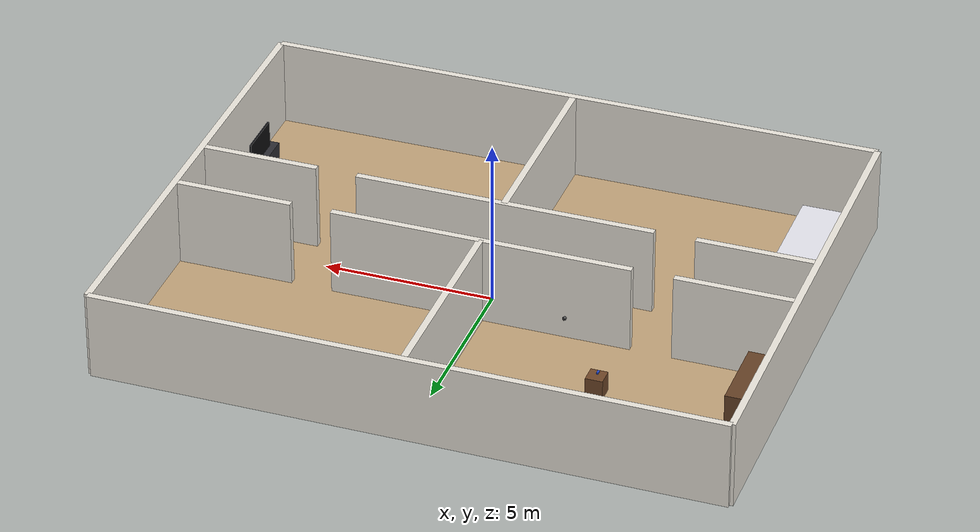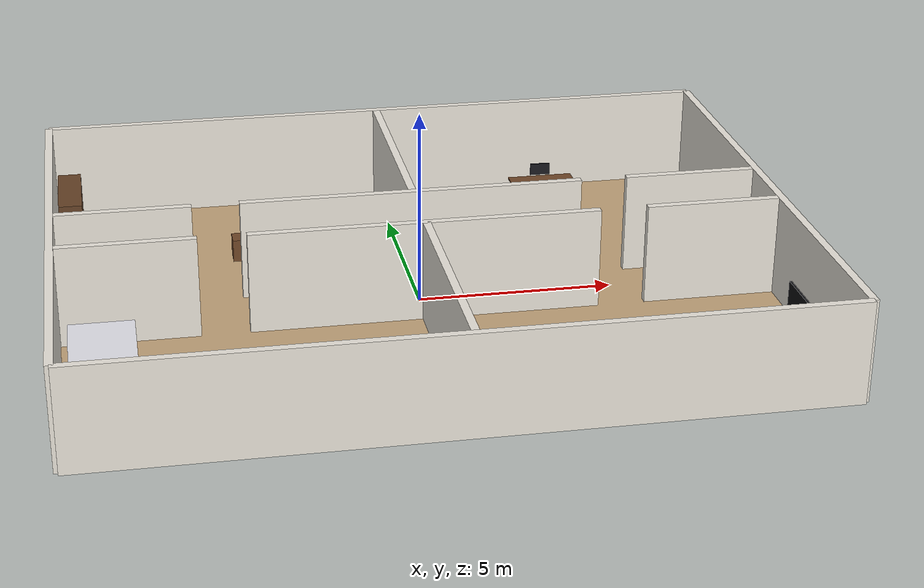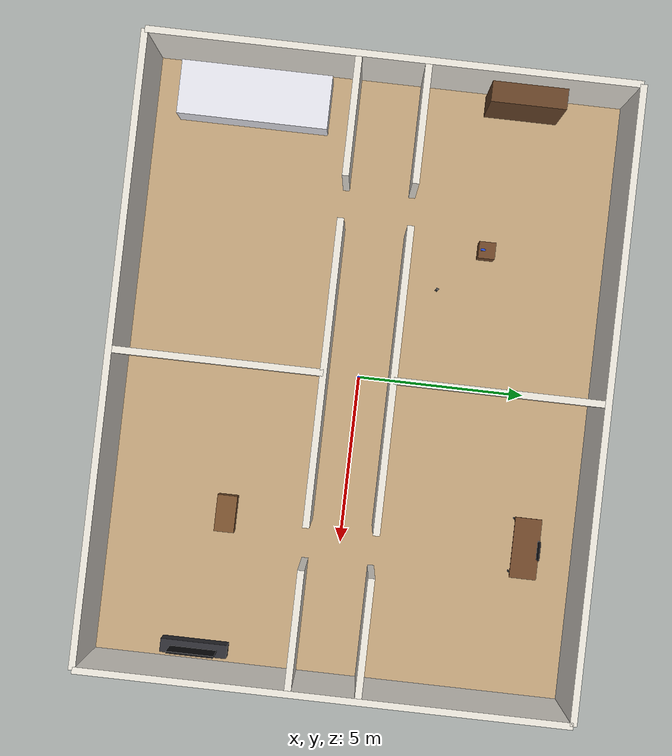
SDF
<sdf version="1.6">
 <world name="gracemo_home">
  <model name="floor">
   <static>true</static>
   <link name="link">
    <collision name="c"><geometry><box><size>18 14 0.05</size></box></geometry></collision>
    <visual name="v">
     <pose>0 0 -0.025 0 0 0</pose>
     <geometry><box><size>18 14 0.05</size></box></geometry>
     <material><ambient>0.72 0.60 0.45 1</ambient><diffuse>0.76 0.64 0.48 1</diffuse></material>
    </visual>
   </link>
  </model>
  <model name="wall_north">
   <static>true</static>
   <link name="l">
    <pose>0 7.1 1.3 0 0 0</pose>
    <collision name="c"><geometry><box><size>18.2 0.2 2.6</size></box></geometry></collision>
    <visual name="v">
     <geometry><box><size>18.2 0.2 2.6</size></box></geometry>
     <material><ambient>0.88 0.86 0.82 1</ambient><diffuse>0.92 0.90 0.86 1</diffuse></material>
    </visual>
   </link>
  </model>
  <model name="wall_south">
   <static>true</static>
   <link name="l">
    <pose>0 -7.1 1.3 0 0 0</pose>
    <collision name="c"><geometry><box><size>18.2 0.2 2.6</size></box></geometry></collision>
    <visual name="v">
     <geometry><box><size>18.2 0.2 2.6</size></box></geometry>
     <material><ambient>0.88 0.86 0.82 1</ambient><diffuse>0.92 0.90 0.86 1</diffuse></material>
    </visual>
   </link>
  </model>
  <model name="wall_west">
   <static>true</static>
   <link name="l">
    <pose>-9.1 0 1.3 0 0 0</pose>
    <collision name="c"><geometry><box><size>0.2 14.2 2.6</size></box></geometry></collision>
    <visual name="v">
     <geometry><box><size>0.2 14.2 2.6</size></box></geometry>
     <material><ambient>0.88 0.86 0.82 1</ambient><diffuse>0.92 0.90 0.86 1</diffuse></material>
    </visual>
   </link>
  </model>
  <model name="wall_east">
   <static>true</static>
   <link name="l">
    <pose>9.1 0 1.3 0 0 0</pose>
    <collision name="c"><geometry><box><size>0.2 14.2 2.6</size></box></geometry></collision>
    <visual name="v">
     <geometry><box><size>0.2 14.2 2.6</size></box></geometry>
     <material><ambient>0.88 0.86 0.82 1</ambient><diffuse>0.92 0.90 0.86 1</diffuse></material>
    </visual>
   </link>
  </model>
  <model name="wall_bedroom_study">
   <static>true</static>
   <link name="l">
    <pose>0 4.0 1.3 0 0 0</pose>
    <collision name="c"><geometry><box><size>0.2 6.0 2.6</size></box></geometry></collision>
    <visual name="v">
     <geometry><box><size>0.2 6.0 2.6</size></box></geometry>
     <material><ambient>0.88 0.86 0.82 1</ambient><diffuse>0.92 0.90 0.86 1</diffuse></material>
    </visual>
   </link>
  </model>
  <model name="wall_kitchen_living">
   <static>true</static>
   <link name="l">
    <pose>0 -4.0 1.3 0 0 0</pose>
    <collision name="c"><geometry><box><size>0.2 6.0 2.6</size></box></geometry></collision>
    <visual name="v">
     <geometry><box><size>0.2 6.0 2.6</size></box></geometry>
     <material><ambient>0.88 0.86 0.82 1</ambient><diffuse>0.92 0.90 0.86 1</diffuse></material>
    </visual>
   </link>
  </model>
  <model name="hall_north_west">
   <static>true</static>
   <link name="l">
    <pose>-7.3 1.0 1.3 0 0 0</pose>
    <collision name="c"><geometry><box><size>3.4 0.2 2.6</size></box></geometry></collision>
    <visual name="v">
     <geometry><box><size>3.4 0.2 2.6</size></box></geometry>
     <material><ambient>0.88 0.86 0.82 1</ambient><diffuse>0.92 0.90 0.86 1</diffuse></material>
    </visual>
   </link>
  </model>
  <model name="hall_north_middle">
   <static>true</static>
   <link name="l">
    <pose>0.0 1.0 1.3 0 0 0</pose>
    <collision name="c"><geometry><box><size>8.8 0.2 2.6</size></box></geometry></collision>
    <visual name="v">
     <geometry><box><size>8.8 0.2 2.6</size></box></geometry>
     <material><ambient>0.88 0.86 0.82 1</ambient><diffuse>0.92 0.90 0.86 1</diffuse></material>
    </visual>
   </link>
  </model>
  <model name="hall_north_east">
   <static>true</static>
   <link name="l">
    <pose>7.3 1.0 1.3 0 0 0</pose>
    <collision name="c"><geometry><box><size>3.4 0.2 2.6</size></box></geometry></collision>
    <visual name="v">
     <geometry><box><size>3.4 0.2 2.6</size></box></geometry>
     <material><ambient>0.88 0.86 0.82 1</ambient><diffuse>0.92 0.90 0.86 1</diffuse></material>
    </visual>
   </link>
  </model>
  <model name="hall_south_west">
   <static>true</static>
   <link name="l">
    <pose>-7.3 -1.0 1.3 0 0 0</pose>
    <collision name="c"><geometry><box><size>3.4 0.2 2.6</size></box></geometry></collision>
    <visual name="v">
     <geometry><box><size>3.4 0.2 2.6</size></box></geometry>
     <material><ambient>0.88 0.86 0.82 1</ambient><diffuse>0.92 0.90 0.86 1</diffuse></material>
    </visual>
   </link>
  </model>
  <model name="hall_south_middle">
   <static>true</static>
   <link name="l">
    <pose>0.0 -1.0 1.3 0 0 0</pose>
    <collision name="c"><geometry><box><size>8.8 0.2 2.6</size></box></geometry></collision>
    <visual name="v">
     <geometry><box><size>8.8 0.2 2.6</size></box></geometry>
     <material><ambient>0.88 0.86 0.82 1</ambient><diffuse>0.92 0.90 0.86 1</diffuse></material>
    </visual>
   </link>
  </model>
  <model name="hall_south_east">
   <static>true</static>
   <link name="l">
    <pose>7.3 -1.0 1.3 0 0 0</pose>
    <collision name="c"><geometry><box><size>3.4 0.2 2.6</size></box></geometry></collision>
    <visual name="v">
     <geometry><box><size>3.4 0.2 2.6</size></box></geometry>
     <material><ambient>0.88 0.86 0.82 1</ambient><diffuse>0.92 0.90 0.86 1</diffuse></material>
    </visual>
   </link>
  </model>
  <model name="wardrobe">
   <static>true</static>
   <link name="l">
    <pose>-8.6 4.0 1.0 0 0 0</pose>
    <collision name="c"><geometry><box><size>0.6 2.2 2.0</size></box></geometry></collision>
    <visual name="v">
     <geometry><box><size>0.6 2.2 2.0</size></box></geometry>
     <material><ambient>0.35 0.22 0.12 1</ambient><diffuse>0.40 0.26 0.15 1</diffuse></material>
    </visual>
   </link>
  </model>
  <model name="nightstand">
   <static>true</static>
   <link name="l">
    <pose>-4.2 3.4 0.30 0 0 0</pose>
    <collision name="c"><geometry><box><size>0.50 0.50 0.60</size></box></geometry></collision>
    <visual name="v">
     <geometry><box><size>0.50 0.50 0.60</size></box></geometry>
     <material><ambient>0.40 0.26 0.14 1</ambient><diffuse>0.44 0.28 0.16 1</diffuse></material>
    </visual>
   </link>
  </model>
  <model name="book_math">
   <pose>-4.20 3.28 0.62 0 0 1.570796</pose>
   <link name="link">
    <inertial>
     <mass>0.20</mass>
     <inertia><ixx>0.0005</ixx><ixy>0</ixy><ixz>0</ixz><iyy>0.001</iyy><iyz>0</iyz><izz>0.001</izz></inertia>
    </inertial>
    <collision name="collision">
     <geometry><box><size>0.14 0.06 0.04</size></box></geometry>
     <surface>
      <friction><ode><mu>3.5</mu><mu2>3.5</mu2></ode></friction>
      <contact><ode><kp>1000000.0</kp><kd>100.0</kd><min_depth>0.0</min_depth></ode></contact>
     </surface>
    </collision>
    <visual name="cover">
     <geometry><box><size>0.14 0.06 0.04</size></box></geometry>
     <material><ambient>0.10 0.20 0.60 1</ambient><diffuse>0.15 0.30 0.85 1</diffuse></material>
    </visual>
   </link>
  </model>
  <model name="bedroom_overview_camera">
   <static>true</static>
   <pose>-2.80 2.00 1.25 0 0.4324 2.5616</pose>
   <link name="link">
    <visual name="housing">
     <geometry><box><size>0.08 0.08 0.08</size></box></geometry>
     <material><ambient>0.2 0.2 0.2 1</ambient><diffuse>0.3 0.3 0.3 1</diffuse></material>
    </visual>
    <sensor name="bedroom_overview_camera" type="camera">
     <topic>/bedroom_overview_camera/image_raw</topic>
     <update_rate>15.0</update_rate>
     <always_on>true</always_on>
     <visualize>true</visualize>
     <camera>
      <horizontal_fov>1.396263</horizontal_fov>
      <image><width>1280</width><height>720</height><format>R8G8B8</format></image>
      <clip><near>0.1</near><far>20.0</far></clip>
     </camera>
    </sensor>
   </link>
  </model>
  <model name="kitchen_counter">
   <static>true</static>
   <link name="l">
    <pose>-8.0 -4.0 0.45 0 0 0</pose>
    <collision name="c"><geometry><box><size>1.6 4.5 0.90</size></box></geometry></collision>
    <visual name="v">
     <geometry><box><size>1.6 4.5 0.90</size></box></geometry>
     <material><ambient>0.85 0.85 0.88 1</ambient><diffuse>0.90 0.90 0.93 1</diffuse></material>
    </visual>
   </link>
  </model>
  <model name="coffee_table">
   <static>true</static>
   <link name="l">
    <pose>4.5 -3.5 0.22 0 0 0</pose>
    <collision name="c"><geometry><box><size>1.1 0.6 0.44</size></box></geometry></collision>
    <visual name="v">
     <geometry><box><size>1.1 0.6 0.44</size></box></geometry>
     <material><ambient>0.42 0.28 0.16 1</ambient><diffuse>0.48 0.32 0.18 1</diffuse></material>
    </visual>
   </link>
  </model>
  <model name="tv_unit">
   <static>true</static>
   <pose>8.6 -4.0 0 0 0 0</pose>
   <link name="console">
    <pose>0 0 0.25 0 0 0</pose>
    <collision name="c"><geometry><box><size>0.4 2.0 0.5</size></box></geometry></collision>
    <visual name="v">
     <geometry><box><size>0.4 2.0 0.5</size></box></geometry>
     <material><ambient>0.15 0.15 0.18 1</ambient><diffuse>0.18 0.18 0.20 1</diffuse></material>
    </visual>
   </link>
   <link name="screen">
    <pose>0 0 0.95 0 0 0</pose>
    <collision name="c"><geometry><box><size>0.06 1.4 0.80</size></box></geometry></collision>
    <visual name="v">
     <geometry><box><size>0.06 1.4 0.80</size></box></geometry>
     <material><ambient>0.03 0.03 0.04 1</ambient><diffuse>0.05 0.05 0.06 1</diffuse></material>
    </visual>
   </link>
  </model>
  <model name="study_desk">
   <static>true</static>
   <pose>4.5 5.5 0 0 0 0</pose>
   <link name="top">
    <pose>0 0 0.73 0 0 0</pose>
    <collision name="c"><geometry><box><size>1.8 0.8 0.04</size></box></geometry></collision>
    <visual name="v">
     <geometry><box><size>1.8 0.8 0.04</size></box></geometry>
     <material><ambient>0.38 0.24 0.14 1</ambient><diffuse>0.44 0.28 0.16 1</diffuse></material>
    </visual>
   </link>
   <link name="leg1">
    <pose>0.80 0.35 0.36 0 0 0</pose>
    <collision name="c">
     <geometry><cylinder><radius>0.025</radius><length>0.72</length></cylinder></geometry>
    </collision>
    <visual name="v">
     <geometry><cylinder><radius>0.025</radius><length>0.72</length></cylinder></geometry>
     <material><ambient>0.2 0.2 0.2 1</ambient></material>
    </visual>
   </link>
   <link name="leg2">
    <pose>-0.80 0.35 0.36 0 0 0</pose>
    <collision name="c">
     <geometry><cylinder><radius>0.025</radius><length>0.72</length></cylinder></geometry>
    </collision>
    <visual name="v">
     <geometry><cylinder><radius>0.025</radius><length>0.72</length></cylinder></geometry>
     <material><ambient>0.2 0.2 0.2 1</ambient></material>
    </visual>
   </link>
   <link name="leg3">
    <pose>0.80 -0.35 0.36 0 0 0</pose>
    <collision name="c">
     <geometry><cylinder><radius>0.025</radius><length>0.72</length></cylinder></geometry>
    </collision>
    <visual name="v">
     <geometry><cylinder><radius>0.025</radius><length>0.72</length></cylinder></geometry>
     <material><ambient>0.2 0.2 0.2 1</ambient></material>
    </visual>
   </link>
   <link name="leg4">
    <pose>-0.80 -0.35 0.36 0 0 0</pose>
    <collision name="c">
     <geometry><cylinder><radius>0.025</radius><length>0.72</length></cylinder></geometry>
    </collision>
    <visual name="v">
     <geometry><cylinder><radius>0.025</radius><length>0.72</length></cylinder></geometry>
     <material><ambient>0.2 0.2 0.2 1</ambient></material>
    </visual>
   </link>
  </model>
  <model name="monitor">
   <static>true</static>
   <pose>4.5 5.85 0.97 0 0 0</pose>
   <link name="l">
    <collision name="c"><geometry><box><size>0.55 0.05 0.32</size></box></geometry></collision>
    <visual name="v">
     <geometry><box><size>0.55 0.05 0.32</size></box></geometry>
     <material><ambient>0.08 0.08 0.10 1</ambient><diffuse>0.10 0.10 0.12 1</diffuse></material>
    </visual>
   </link>
  </model>
 </world>
</sdf>
